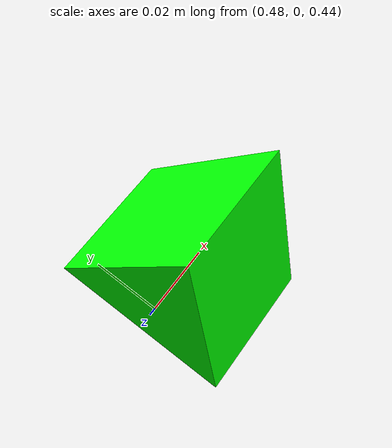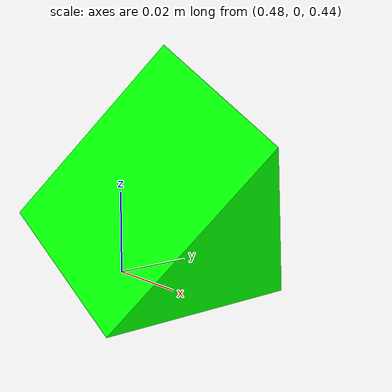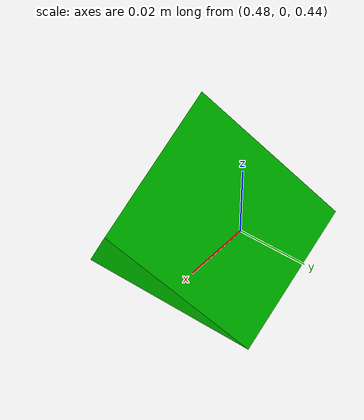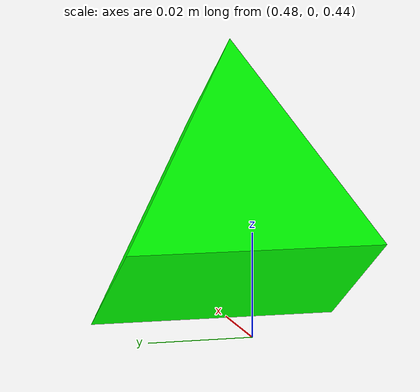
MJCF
<mujoco>
    <asset>
        <!-- 导入 STL 文件 -->
        <mesh name="triangle_mesh" file="objects/cube/triangle.stl" scale="0.01 0.01 0.01"/>
    </asset>
    <worldbody>
        <body name="green_block" pos="0.5 0.0 0.46">
            <joint name="green_block:joint" type="free" damping="0.1" />
            <geom name="green_triangle" type="mesh" mesh="triangle_mesh" rgba="0 1 0 1" conaffinity="0" contype="0" group="1" density="0" euler="0 29.8 0"/>
  <geom name="green_block_collision" size="0.02 0.02 0.02" type="box" conaffinity="1" condim="4" contype="1" group="4" mass="0.01" />
        </body>
    </worldbody>
</mujoco>
